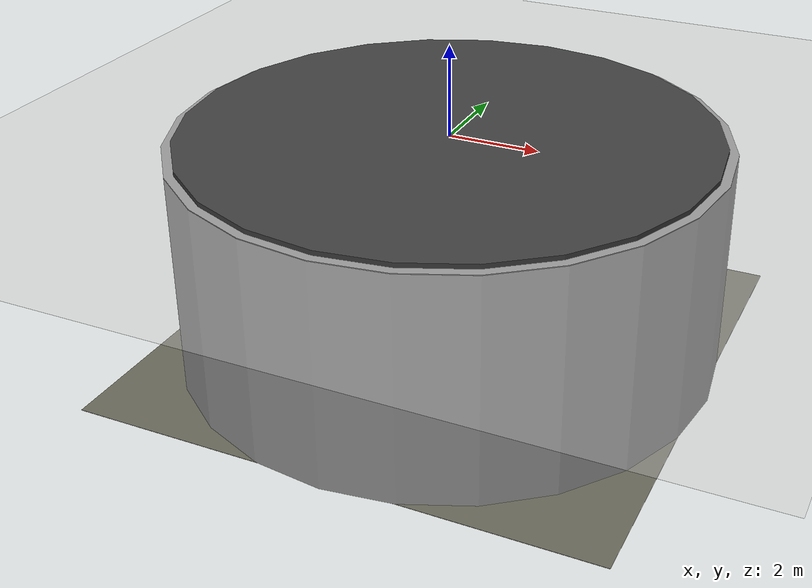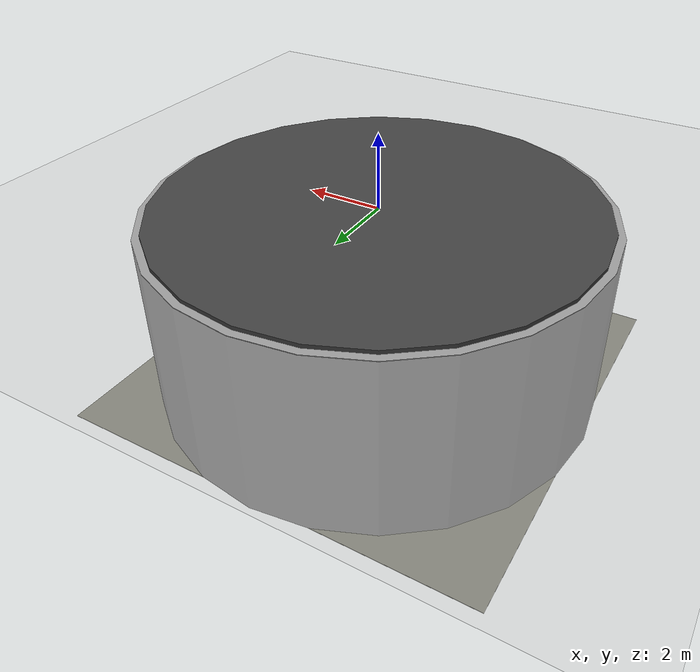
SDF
<?xml version="1.0" ?>
<sdf version="1.6">
  <world name="deep_pit_world">

    <!-- 物理引擎配置 -->
    <physics type="ode">
      <real_time_update_rate>1000</real_time_update_rate>
      <max_step_size>0.001</max_step_size>
    </physics>

    <!-- 场景光照 -->
    <scene>
      <ambient>0.4 0.4 0.4 1</ambient>
      <background>0.7 0.7 0.7 1</background>
      <shadows>true</shadows>
    </scene>

    <!-- 地面平面 -->
    <model name="ground_plane">
      <static>true</static>
      <link name="link">
        <collision name="collision">
          <geometry>
            <plane>
              <normal>0 0 1</normal>
              <size>100 100</size>
            </plane>
          </geometry>
        </collision>
        <visual name="visual">
          <geometry>
            <plane>
              <normal>0 0 1</normal>
              <size>100 100</size>
            </plane>
          </geometry>
          <material>
            <script>
              <uri>file://media/materials/scripts/gazebo.material</uri>
              <name>Gazebo/Grey</name>
            </script>
          </material>
        </visual>
      </link>
    </model>

    <!-- 太阳 (主光源) -->
    <light name="sun" type="directional">
      <cast_shadows>true</cast_shadows>
      <pose>0 0 10 0 0 0</pose>
      <diffuse>0.8 0.8 0.8 1</diffuse>
      <specular>0.2 0.2 0.2 1</specular>
      <direction>-0.5 0.5 -1</direction>
    </light>

    <!-- 基坑墙壁 (圆环) -->
    <model name="pit_wall">
      <static>true</static>
      <pose>0 0 0 0 0 0</pose>
      <link name="wall_link">
        <!-- 外墙 -->
        <collision name="outer_collision">
          <pose>0 0 -2.5 0 0 0</pose>
          <geometry>
            <cylinder>
              <radius>6</radius>
              <length>5</length>
            </cylinder>
          </geometry>
        </collision>
        <visual name="outer_visual">
          <pose>0 0 -2.5 0 0 0</pose>
          <geometry>
            <cylinder>
              <radius>6</radius>
              <length>5</length>
            </cylinder>
          </geometry>
          <material>
            <ambient>0.5 0.5 0.5 1</ambient>
            <diffuse>0.6 0.6 0.6 1</diffuse>
          </material>
        </visual>
        <!-- 内墙 (深色，模拟坑内) -->
        <visual name="inner_visual">
          <pose>0 0 -2.5 0 0 0</pose>
          <geometry>
            <cylinder>
              <radius>5.8</radius>
              <length>5.2</length>
            </cylinder>
          </geometry>
          <material>
            <ambient>0.2 0.2 0.2 1</ambient>
            <diffuse>0.25 0.25 0.25 1</diffuse>
          </material>
        </visual>
      </link>
    </model>

    <!-- 基坑底部 -->
    <model name="pit_bottom">
      <static>true</static>
      <pose>0 0 -5 0 0 0</pose>
      <link name="bottom_link">
        <collision name="collision">
          <geometry>
            <plane>
              <normal>0 0 1</normal>
              <size>11.6 11.6</size>
            </plane>
          </geometry>
        </collision>
        <visual name="visual">
          <geometry>
            <plane>
              <normal>0 0 1</normal>
              <size>11.6 11.6</size>
            </plane>
          </geometry>
          <material>
            <ambient>0.3 0.3 0.25 1</ambient>
            <diffuse>0.4 0.4 0.35 1</diffuse>
          </material>
        </visual>
      </link>
    </model>

    <!-- 6根支护桩 (均匀分布在半径5m的圆上) -->
    <model name="pile_1">
      <static>true</static>
      <pose>5 0 -2.5 0 0 0</pose>
      <link name="pile_link">
        <collision name="collision">
          <geometry>
            <cylinder>
              <radius>0.4</radius>
              <length>5</length>
            </cylinder>
          </geometry>
        </collision>
        <visual name="visual">
          <geometry>
            <cylinder>
              <radius>0.4</radius>
              <length>5</length>
            </cylinder>
          </geometry>
          <material>
            <ambient>0.6 0.6 0.6 1</ambient>
            <diffuse>0.7 0.7 0.7 1</diffuse>
          </material>
        </visual>
      </link>
    </model>

    <model name="pile_2">
      <static>true</static>
      <pose>2.5 4.33 -2.5 0 0 0</pose>
      <link name="pile_link">
        <collision name="collision">
          <geometry>
            <cylinder>
              <radius>0.4</radius>
              <length>5</length>
            </cylinder>
          </geometry>
        </collision>
        <visual name="visual">
          <geometry>
            <cylinder>
              <radius>0.4</radius>
              <length>5</length>
            </cylinder>
          </geometry>
          <material>
            <ambient>0.6 0.6 0.6 1</ambient>
            <diffuse>0.7 0.7 0.7 1</diffuse>
          </material>
        </visual>
      </link>
    </model>

    <model name="pile_3">
      <static>true</static>
      <pose>-2.5 4.33 -2.5 0 0 0</pose>
      <link name="pile_link">
        <collision name="collision">
          <geometry>
            <cylinder>
              <radius>0.4</radius>
              <length>5</length>
            </cylinder>
          </geometry>
        </collision>
        <visual name="visual">
          <geometry>
            <cylinder>
              <radius>0.4</radius>
              <length>5</length>
            </cylinder>
          </geometry>
          <material>
            <ambient>0.6 0.6 0.6 1</ambient>
            <diffuse>0.7 0.7 0.7 1</diffuse>
          </material>
        </visual>
      </link>
    </model>

    <model name="pile_4">
      <static>true</static>
      <pose>-5 0 -2.5 0 0 0</pose>
      <link name="pile_link">
        <collision name="collision">
          <geometry>
            <cylinder>
              <radius>0.4</radius>
              <length>5</length>
            </cylinder>
          </geometry>
        </collision>
        <visual name="visual">
          <geometry>
            <cylinder>
              <radius>0.4</radius>
              <length>5</length>
            </cylinder>
          </geometry>
          <material>
            <ambient>0.6 0.6 0.6 1</ambient>
            <diffuse>0.7 0.7 0.7 1</diffuse>
          </material>
        </visual>
      </link>
    </model>

    <model name="pile_5">
      <static>true</static>
      <pose>-2.5 -4.33 -2.5 0 0 0</pose>
      <link name="pile_link">
        <collision name="collision">
          <geometry>
            <cylinder>
              <radius>0.4</radius>
              <length>5</length>
            </cylinder>
          </geometry>
        </collision>
        <visual name="visual">
          <geometry>
            <cylinder>
              <radius>0.4</radius>
              <length>5</length>
            </cylinder>
          </geometry>
          <material>
            <ambient>0.6 0.6 0.6 1</ambient>
            <diffuse>0.7 0.7 0.7 1</diffuse>
          </material>
        </visual>
      </link>
    </model>

    <model name="pile_6">
      <static>true</static>
      <pose>2.5 -4.33 -2.5 0 0 0</pose>
      <link name="pile_link">
        <collision name="collision">
          <geometry>
            <cylinder>
              <radius>0.4</radius>
              <length>5</length>
            </cylinder>
          </geometry>
        </collision>
        <visual name="visual">
          <geometry>
            <cylinder>
              <radius>0.4</radius>
              <length>5</length>
            </cylinder>
          </geometry>
          <material>
            <ambient>0.6 0.6 0.6 1</ambient>
            <diffuse>0.7 0.7 0.7 1</diffuse>
          </material>
        </visual>
      </link>
    </model>

    <!-- 坑底点光源 -->
    <light name="pit_bottom_light" type="point">
      <pose>0 0 -4.5 0 0 0</pose>
      <diffuse>0.5 0.5 0.4 1</diffuse>
      <specular>0.1 0.1 0.1 1</specular>
      <attenuation>
        <range>8</range>
        <constant>0.5</constant>
        <linear>0.05</linear>
        <quadratic>0.01</quadratic>
      </attenuation>
    </light>

  </world>
</sdf>
